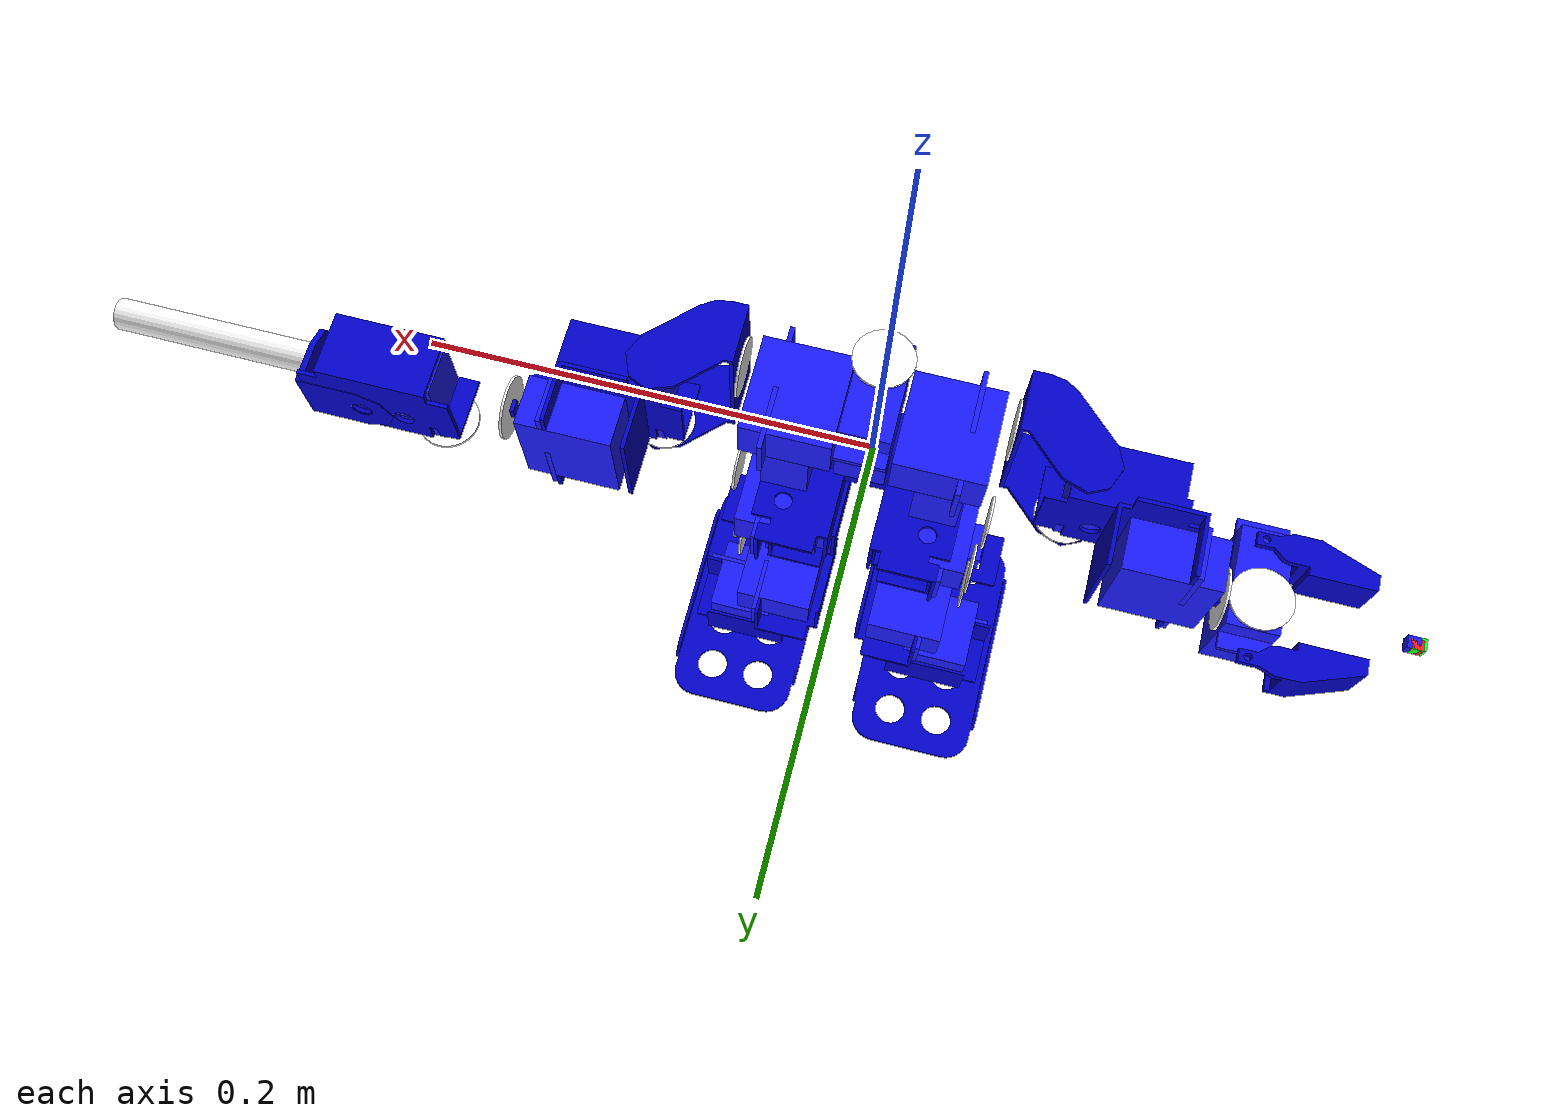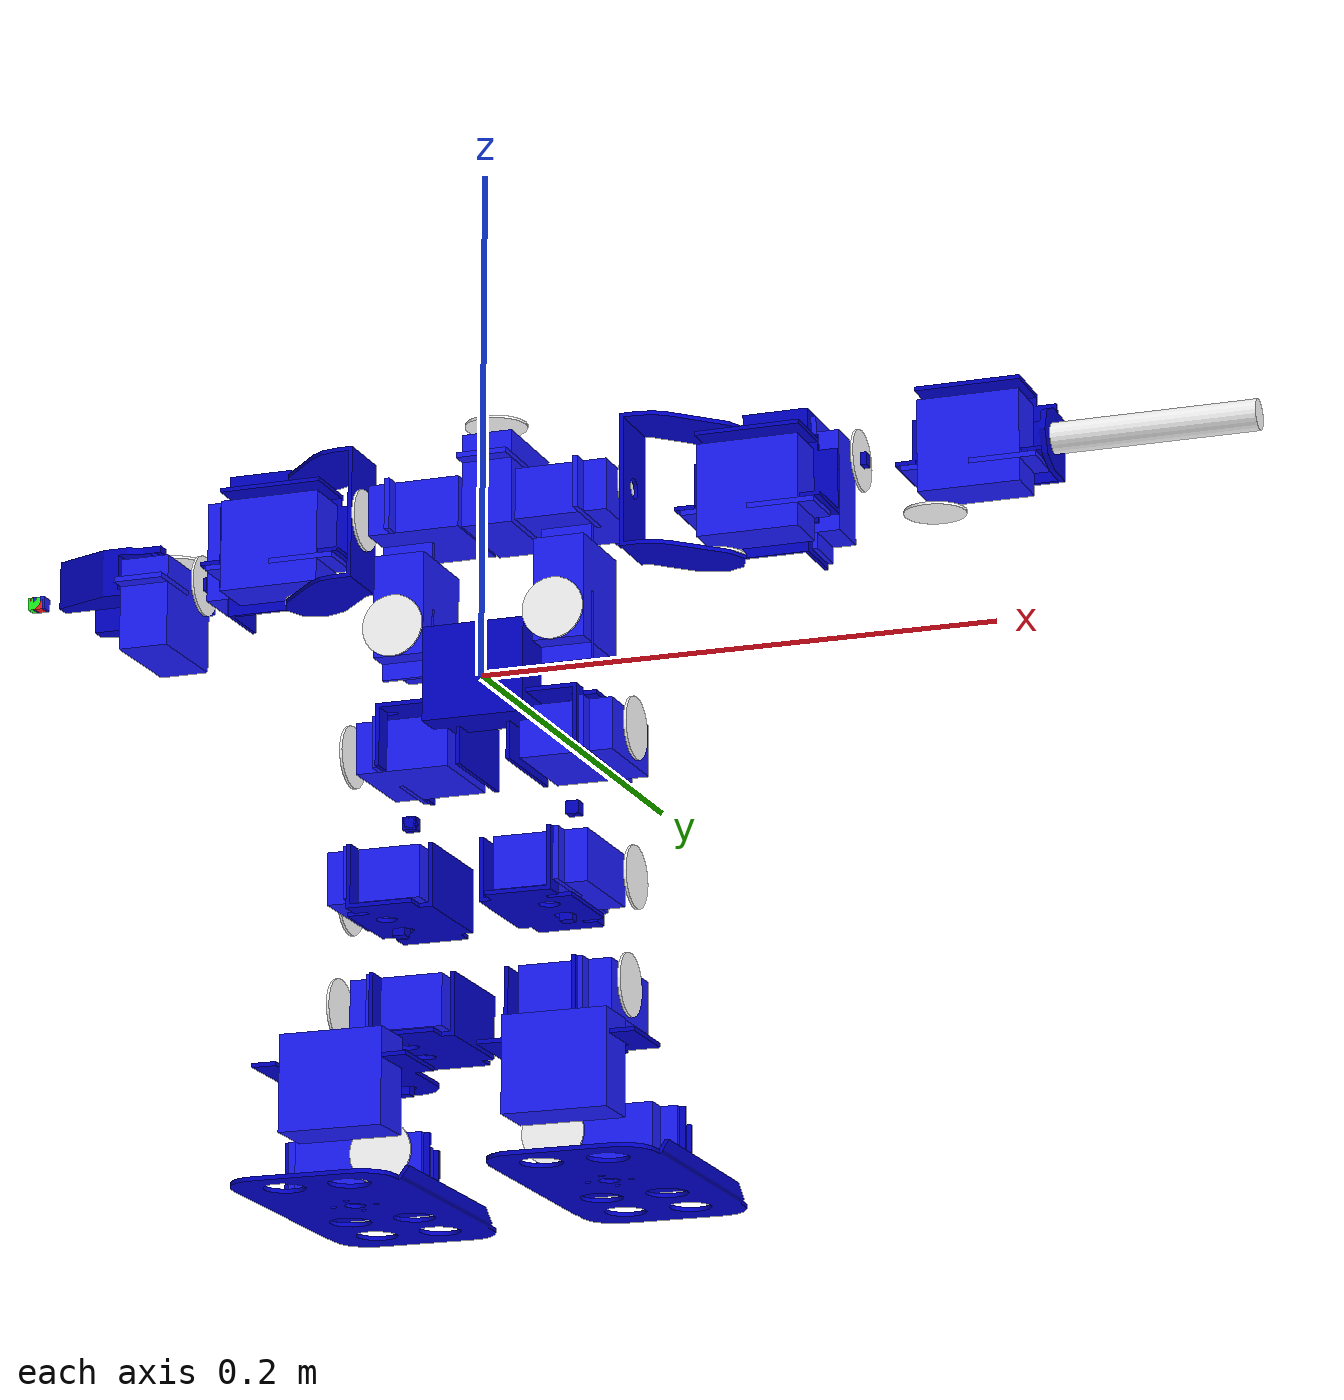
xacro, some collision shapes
<?xml version="1.0"?>
<robot xmlns:xacro="http://www.ros.org/wiki/xacro" name="george">
  <!-- Import all Gazebo-customization elements, including Gazebo colors -->
  <xacro:include filename="$(find george)/urdf/george.gazebo" />

  <xacro:property name="M_PI" value="3.1416" />

  <xacro:macro name="default_inertia">
	<inertia ixx="0.001" ixy="0.0" ixz="0.0" iyy="0.001" iyz="0.0" izz="0.001"/>
  </xacro:macro>

  <link name="torso_mass">
      <visual>
          <geometry>
              <box size=".001 .001 .001"/>
          </geometry>
      </visual>
      <collision>
         <geometry>
             <box size=".001 .001 .001"/>
          </geometry>
      </collision>
      <inertial>
          <inertia ixx="0.001" ixy="0.0" ixz="0.0" iyy="0.001" iyz="0.0" izz="0.001"/>
          <mass value="0.4"/>
      </inertial>
  </link>

  <link name="base_link">
    <visual>
      <geometry>
	<mesh filename="package://george/meshes/torso_mm.dae" scale="1 1 1"/>
      </geometry>
      <origin xyz="0 0 0" rpy="${M_PI/2} 0 ${M_PI}"/>
      <material name="blue">
        <color rgba="0 0 .8 1"/>
      </material>
    </visual>
    <collision>
      <geometry>
	      <box size=".040 .02 .0365"/>
      </geometry>
      <origin xyz="0 0 0" rpy="0 0 ${M_PI}"/>
    </collision>
  </link>

  <!-- *****  Servo macro **********  -->
  <xacro:macro name="servo_body" params="prefix offset">
    <link name="${prefix}_servo_body">
      <visual>
	<geometry>
	  <box size=".040 .02 .0365"/>
	</geometry>
	<origin rpy="0 0 0" xyz="${offset} 0 -0.00825"/>
	<material name="black">
	  <color rgba=".1 .1 1 1"/>
	</material>
      </visual>
      <collision>
	<geometry>
          <box size=".040 .02 .0365"/>
	</geometry>
	<origin rpy="0 0 0" xyz="${offset} 0 -0.00825"/>
      </collision>
      <inertial>
	<mass value="0.055"/>
	<xacro:default_inertia/>
      </inertial>
    </link>

  </xacro:macro>

  <xacro:macro name="servo_parts" params="prefix offset">
    <xacro:servo_body prefix="${prefix}" offset="${offset}"/>

    <link name="${prefix}_servo_lip">
      <visual>
        <geometry>
          <box size=".0528 .02 .002"/>
        </geometry>
        <origin rpy="0 0 0.001" xyz="0 0 0"/>
        <material name="black">
          <color rgba=".1 .1 1 1"/>
        </material>
      </visual>
      <collision>
        <geometry>
          <box size=".0528 .02 .002"/>
	</geometry>
        <origin rpy="0 0 0.001" xyz="0 0 0"/>
       </collision>
      <inertial>
	<mass value="0.001"/>
	<xacro:default_inertia/>
      </inertial>
    </link>

    <link name="${prefix}_servo_horn">
    <visual>
      <geometry>
        <cylinder length="0.001" radius="0.012"/>
      </geometry>
      <origin rpy="0 0 0" xyz="0 0 -.0005"/>
      <material name="white">
        <color rgba="1 1 1 1"/>
      </material>
    </visual>
    <collision>
      <geometry>
        <cylinder length="0.001" radius="0.012"/>
      </geometry>
      <origin rpy="0 0 0" xyz="0 0 -.0005"/>
    </collision>
      <inertial>
	<mass value="0.001"/>
	<xacro:default_inertia/>
      </inertial>
  </link>
  </xacro:macro>

  <!-- servo body parent - for use when the body is the parent -->
  <xacro:macro name="servo_bp" params="prefix rot">
    <xacro:servo_parts prefix="${prefix}" offset="0"/>

    <joint name="${prefix}_servo_lip_to_body" type="fixed">
      <parent link="${prefix}_servo_body"/>
      <child link="${prefix}_servo_lip"/>
      <origin xyz="0 0 0"/>
    </joint>

  <joint name="${prefix}" type="revolute" >
    <axis xyz="0 0 -1"/>
    <limit effort="1000.0" lower="-${M_PI/2}" upper="${M_PI/2}" velocity="0.5"/>
    <parent link="${prefix}_servo_body"/>
    <child link="${prefix}_servo_horn"/>
    <origin xyz=".01 0 0.0161" rpy="0 0 ${rot}"/>
  </joint>
  </xacro:macro>

  <!-- servo horn parent - for use when the body is the parent -->
  <xacro:macro name="servo_hp" params="prefix rot">
    <xacro:servo_parts prefix="${prefix}" offset="0.0161" />

    <joint name="${prefix}_servo_lip_to_body" type="fixed">
      <parent link="${prefix}_servo_body"/>
      <child link="${prefix}_servo_lip"/>
      <origin xyz="0.0161 0 0"/>
    </joint>

  <joint name="${prefix}" type="revolute">
    <axis xyz="0 0 1"/>
    <limit effort="1000.0" lower="-${M_PI/2}" upper="${M_PI/2}" velocity="0.5"/>
    <parent link="${prefix}_servo_horn"/>
    <child link="${prefix}_servo_body"/>
    <origin xyz="0.0 0 -0.0161" rpy="0 0 ${rot}"/>
  </joint>
  </xacro:macro>
  <!-- end servo macro -->

  <!-- cbracket macro, visual origin at inside end -->
  <xacro:macro name="cbracket_e" params="name">
    <xacro:cbracket name="${name}" xyz="0 -0.0286 -0.0246" rpy="0 ${M_PI/2} 0"/>
  </xacro:macro>

  <xacro:macro name="cbracket_s" params="name">
    <xacro:cbracket name="${name}" xyz="0 0 0" rpy="-${M_PI/2} 0 0"/>
  </xacro:macro>

  <xacro:macro name="cbracket" params="name xyz rpy">
  <link name="${name}">
    <visual>
      <geometry>
	<mesh filename="package://george/meshes/cbracket-simple.dae" scale="1 1 1"/>
      </geometry>
      <origin xyz="${xyz}" rpy="${rpy}"/>
      <material name="blue">
        <color rgba="0 0 .8 1"/>
      </material>
    </visual>
    <collision>
      <geometry>
        <box size=".005 .005 .005"/>
	<!--  mesh filename="package://george/meshes/cbracket-simple.dae" scale="1 1 1"/-->
      </geometry>
      <origin xyz="${xyz}" rpy="${rpy}"/>
    </collision>
      <inertial>
	<mass value="0.001"/>
	<xacro:default_inertia/>
      </inertial>
  </link>
  </xacro:macro>
  <!-- end multi purpose bracket -->

  <!-- multi purpose bracket macro A side as the parent -->
  <xacro:macro name="mpbracket_a" params="name rot">
    <xacro:mpbracket name="${name}" xyz="0 0 0" rpy="-${M_PI/2} 0 ${rot}"/>
  </xacro:macro>

  <!-- multi purpose bracket macro B side as the parent -->
  <xacro:macro name="mpbracket_b" params="name">
    <xacro:mpbracket name="${name}" xyz="0 -0.0121 -0.0174" rpy="0 0 0"/>
  </xacro:macro>

  <!-- multi purpose bracket macro C side as the parent -->
  <xacro:macro name="mpbracket_c" params="name">
    <xacro:mpbracket name="${name}" xyz="0.0161 0.0142 -0.0144" rpy="0 ${M_PI} ${M_PI}"/>
  </xacro:macro>

  <!-- multi purpose bracket macro C side as the parent, rotated -->
  <xacro:macro name="mpbracket_cr" params="name">
    <xacro:mpbracket name="${name}" xyz="0.0161 -0.0142 -0.0144" rpy="0 ${M_PI} 0"/>
  </xacro:macro>

  <!-- multi purpose bracket macro -->
  <xacro:macro name="mpbracket" params="name xyz rpy">
  <link name="${name}">
    <visual>
      <geometry>
	<mesh filename="package://george/meshes/multi-purp-simple.dae" scale="1 1 1"/>
      </geometry>
      <origin xyz="${xyz}" rpy="${rpy}"/>
      <material name="blue">
        <color rgba="0 0 .8 1"/>
      </material>
    </visual>
    <collision>
      <geometry>
        <box size=".005 .005 .005"/>
	<!--  mesh filename="package://george/meshes/multi-purp-simple.dae" scale="1 1 1"/-->
      </geometry>
      <origin xyz="${xyz}" rpy="${rpy}"/>
    </collision>
      <inertial>
	<mass value="0.001"/>
	<xacro:default_inertia/>
      </inertial>
  </link>
  </xacro:macro>
  <!-- end multi purpose bracket -->

  <!-- offset-c bracket macro -->
  <xacro:macro name="offcbracket" params="name rot">
  <link name="${name}">
    <visual>
      <geometry>
	<mesh filename="package://george/meshes/offset-c-simple.dae" scale="1 1 1"/>
      </geometry>
      <origin xyz="0 0 0" rpy="${M_PI/2} 0 ${rot}"/>
      <material name="blue">
        <color rgba="0 0 .8 1"/>
      </material>
    </visual>
    <collision>
      <geometry>
        <box size=".005 .005 .005"/>
	<!-- mesh filename="package://george/meshes/offset-c-simple.dae" scale="1 1 1"/-->
      </geometry>
      <origin xyz="0 0 0" rpy="${M_PI/2} 0 ${rot}"/>
    </collision>
      <inertial>
	<mass value="0.001"/>
	<xacro:default_inertia/>
      </inertial>
  </link>
  </xacro:macro>
  <!-- end offset c bracket -->

  <!-- lconnector macro -->
  <xacro:macro name="lconnector" params="name rot">
  <link name="${name}">
    <visual>
      <geometry>
	<mesh filename="package://george/meshes/lconnector-simple.dae" scale="1 1 1"/>
      </geometry>
      <origin xyz="0 0 0" rpy="0 0 ${rot}"/>
      <material name="blue">
        <color rgba="0 0 .8 1"/>
      </material>
    </visual>
    <collision>
      <geometry>
        <box size=".005 .005 .005"/>
	<!--  mesh filename="package://george/meshes/lconnector-simple.dae" scale="1 1 1"/-->
      </geometry>
      <origin xyz="0 0 0" rpy="0 0 ${rot}"/>
    </collision>
      <inertial>
	<mass value="0.001"/>
	<xacro:default_inertia/>
      </inertial>
  </link>
  </xacro:macro>
  <!-- end lconnector -->

  <!-- foot macro -->
  <xacro:macro name="foot" params="name">
  <link name="${name}">
    <visual>
      <geometry>
	<mesh filename="package://george/meshes/foot.dae"/>
      </geometry>
      <origin xyz="0 0 0" rpy="0 0 0"/>
      <material name="blue">
        <color rgba="0 0 .8 1"/>
      </material>
    </visual>
    <collision>
      <geometry>
        <box size="0.065 0.002 0.15"/>
      </geometry>
      <origin xyz="0 0 0" rpy="0 0 0"/>
    </collision>
      <inertial>
	<mass value="0.001"/>
	<xacro:default_inertia/>
      </inertial>
  </link>
  </xacro:macro>
  <!-- end foot macro -->

 <!-- tube -->
  <xacro:property name="tubelen" value="0.079" />
  <xacro:property name="tuberad" value="0.006" />

  <xacro:macro name="tube" params="name">

    <link name="${name}">
    <visual>
      <geometry>
        <cylinder length="${tubelen}" radius="${tuberad}"/>
      </geometry>
      <origin xyz="${tubelen/2} 0 0" rpy="0 ${M_PI/2} 0"/>
      <material name="white">
        <color rgba="1 1 1 1"/>
      </material>
    </visual>
    <collision>
      <geometry>
        <cylinder length="${tubelen}" radius="${tuberad}"/>
      </geometry>
      <origin xyz="${tubelen/2} 0 0" rpy="0 ${M_PI/2} 0"/>
    </collision>
      <inertial>
	<mass value="0.001"/>
	<xacro:default_inertia/>
      </inertial>
  </link>
  </xacro:macro>
 <!-- end tube -->

  <!-- gripper macro -->
  <xacro:macro name="gripper" params="name">

  <link name="${name}_base">
    <visual>
      <geometry>
        <mesh filename="package://george/meshes/gripper-base.dae" scale="1 1 1"/>
      </geometry>
      <origin xyz="0 0 0" rpy="0 ${-M_PI/2} 0"/>
      <material name="blue">
        <color rgba="0 0 .8 1"/>
      </material>
    </visual>
    <collision>
      <geometry>
        <box size=".005 .005 .005"/>
      </geometry>
    </collision>
      <inertial>
        <mass value="0.001"/>
        <xacro:default_inertia/>
      </inertial>

  </link>

  <link name="${name}_lfinger">
    <visual>
      <geometry>
        <mesh filename="package://george/meshes/gripper-lfinger.dae" scale="1 1 1"/>
      </geometry>
      <origin xyz="0 0 0" rpy="0 0 0"/>
      <material name="blue">
        <color rgba="0 0 .8 1"/>
      </material>
    </visual>
    <collision>
      <geometry>
        <box size=".005 .005 .005"/>
      </geometry>
    </collision>
      <inertial>
        <mass value="0.001"/>
        <xacro:default_inertia/>
      </inertial>

  </link>

  <!--joint name="${name}_lfinger_to_base" type="prismatic"-->
  <joint name="${name}_lfinger_to_base" type="fixed">
    <axis xyz="0 1 0"/>
    <parent link="${name}_base"/>
    <child link="${name}_lfinger"/>
    <origin xyz="0 0 0" rpy="0 ${-M_PI/2} 0"/>
    <limit effort="1000.0" lower="-0.005" upper="0.0137" velocity="0.5"/>
  </joint>

  <link name="${name}_rfinger">
    <visual>
      <geometry>
        <mesh filename="package://george/meshes/gripper-rfinger.dae" scale="1 1 1"/>
      </geometry>
      <origin xyz="0 0 0" rpy="0 0 0"/>
      <material name="blue">
        <color rgba="0 0 .8 1"/>
      </material>
    </visual>
    <collision>
      <geometry>
        <box size=".005 .005 .005"/>
      </geometry>
    </collision>
      <inertial>
        <mass value="0.001"/>
        <xacro:default_inertia/>
      </inertial>

  </link>

  <joint name="${name}_rfinger_to_base" type="fixed">
  <!--joint name="${name}_rfinger_to_base" type="prismatic"-->
    <axis xyz="0 1 0"/>
    <parent link="${name}_base"/>
    <child link="${name}_rfinger"/>
    <origin xyz="0 0 0" rpy="0 ${-M_PI/2} 0"/>
    <limit effort="1000.0" lower="-0.0137" upper="0.005" velocity="0.5"/>
  </joint>

  <xacro:servo_bp prefix="${name}" rot="0" />

  <joint name="${name}_servo_to_base" type="fixed">
    <parent link="${name}_base"/>
    <child link="${name}_servo_body"/>
    <origin xyz="${0.0365/2 - 0.00825 - 0.0042} 0.0095 ${0.0021 + 0.0197/2}" rpy="${M_PI/2} 0 ${-M_PI/2}"/>
  </joint>

  </xacro:macro>
  <!-- end gripper macro -->

  <!-- low profile axis macro -->
  <xacro:macro name="lpbracket" params="name mirror">
  <link name="${name}">
    <visual>
      <geometry>
        <mesh filename="package://george/meshes/low-profile-simple.dae" scale="1 1 1"/>
      </geometry>
      <origin xyz="0 0 0" rpy="-${M_PI/2} -${M_PI/2} 0"/>
      <material name="blue">
        <color rgba="0 0 .8 1"/>
      </material>
    </visual>
    <collision>
      <geometry>
        <box size=".005 .005 .005"/>
        <!--  mesh filename="package://george/meshes/low-profile-simple.dae" scale="1 1 1"/-->
      </geometry>
      <origin xyz="0 0 0" rpy="-${M_PI/2} -${M_PI/2} 0"/>
      <material name="blue">)}
        <color rgba="0 0 .8 1"/>
      </material>
    </collision>
      <inertial>
        <mass value="0.001"/>
        <xacro:default_inertia/>
      </inertial>

  </link>

  <xacro:servo_body prefix="${name}_servo" offset="0"/>
  <joint name="${name}_lp_to_servo" type="fixed">
    <parent link="${name}"/>
    <child link="${name}_servo_servo_body"/>
    <origin xyz="-${0.0497 - 0.010} ${mirror * 0.00825 * 2} ${-(0.0103 - (0.04 / 2))}" rpy="0 ${M_PI/2} ${M_PI/2}"/>

  </joint>

  </xacro:macro>
  <!-- end low profile axis macro -->

  <!-- ****************************** Main robot definition ***************** -->

  <!-- ********* Left Leg **************************************** -->

  <xacro:servo_bp prefix="LWaist" rot="${M_PI/2}" />

  <joint name="torso_to_base" type="fixed">
    <parent link="base_link"/>
    <child link="torso_mass"/>
    <origin xyz="0 0 0" rpy="0 0 0"/>
  </joint>

  <joint name="torso_to_lwaist" type="fixed">
    <parent link="base_link"/>
    <child link="LWaist_servo_body"/>
    <origin xyz="0.032 0.005 0.03" rpy="${M_PI/2} ${M_PI/2} 0"/>
  </joint>

  <xacro:cbracket_e name="lthigh1" />

  <joint name="lthigh1_to_lwaist" type="fixed">
    <parent link="LWaist_servo_horn"/>
    <child link="lthigh1"/>
    <origin xyz="0 0 0" rpy="0 0 0"/>
  </joint>

  <xacro:mpbracket_a name="lthigh2" rot="${M_PI/2}"/>
  <joint name="lthigh1_to_lthigh2" type="fixed">
    <parent link="lthigh1"/>
    <child link="lthigh2"/>
    <origin xyz="-0.0054 -0.0286 ${-0.0246-0.0083}" rpy="-${M_PI/2} 0 0"/>
  </joint>

  <xacro:servo_bp prefix="LHip" rot="${M_PI}" />

  <joint name="lthigh2_to_LHip" type="fixed">
    <parent link="lthigh2"/>
    <child link="LHip_servo_body"/>
    <origin xyz="${0.0134+.001} 0 -0.0142" rpy="-${M_PI/2} 0 -${M_PI/2}"/>
  </joint>

  <xacro:cbracket_e name="lthigh3" />

  <joint name="lthigh3_to_lhip" type="fixed">
    <parent link="LHip_servo_horn"/>
    <child link="lthigh3"/>
    <origin xyz="0 0 0" rpy="0 0 0"/>
  </joint>

  <xacro:cbracket_s name="lthigh4" />

  <joint name="lthigh3_to_lthigh4" type="fixed">
    <parent link="lthigh3"/>
    <child link="lthigh4"/>
    <origin xyz="0 -0.0286 -0.0246" rpy="-${M_PI/2} ${M_PI/2} 0"/>
  </joint>

  <xacro:servo_hp prefix="LKnee" rot="${M_PI/2}"/>

  <joint name="lthigh4_to_lknee" type="fixed">
    <parent link="lthigh4"/>
    <child link="LKnee_servo_horn"/>
    <origin xyz="-0.0246 0 -0.0286" rpy="0 -${M_PI/2} 0"/>
  </joint>

  <xacro:mpbracket_c name="lknee1"/>

  <joint name="lknee_to_lknee1" type="fixed">
    <parent link="LKnee_servo_body"/>
    <child link="lknee1"/>
    <origin xyz="0 0 0" rpy="0 0 0"/>
  </joint>

  <xacro:cbracket_s name="lknee2" />

  <joint name="lknee1_to_lknee2" type="fixed">
    <parent link="lknee1"/>
    <child link="lknee2"/>
    <origin xyz="${0.0161-0.0083} 0.0141 ${-0.0134+0.0054}" rpy="${M_PI/2} ${M_PI/2} 0"/>
  </joint>

  <xacro:servo_hp prefix="LAnkleBend" rot="${-M_PI/2}"/>

  <joint name="lknee2_to_lanklebend" type="fixed">
    <parent link="lknee2"/>
    <child link="LAnkleBend_servo_horn"/>
    <origin xyz="-0.0246 0 -0.0286" rpy="0 -${M_PI/2} 0"/>
  </joint>

  <xacro:mpbracket_cr name="lshin1"/>

  <joint name="lanklebend_to_lshin1" type="fixed">
    <parent link="LAnkleBend_servo_body"/>
    <child link="lshin1"/>
    <origin xyz="0 0 0" rpy="0 0 0"/>
  </joint>

  <xacro:lpbracket name="lpleft" mirror="0"/>

  <joint name="LAnkleRotate" type="revolute">
    <axis xyz="0 -1 0"/>
    <limit effort="1000.0" lower="-${M_PI/2}" upper="${M_PI/2}" velocity="0.5"/>
    <parent link="lshin1"/>
    <child link="lpleft"/>
    <origin xyz="${0.0161-0.0083} -${0.0141+0.014} ${-0.0134+0.0054}" rpy="0 0 0"/>
  </joint>

  <xacro:cbracket_s name="lshin2" />

  <joint name="lpleft_to_lshin2" type="fixed">
    <parent link="lpleft"/>
    <child link="lshin2"/>
    <origin xyz="0 0 0" rpy="-${M_PI/2} 0 0"/>
  </joint>

  <xacro:servo_hp prefix="LAnkleTilt" rot="-${M_PI/2}"/>

  <joint name="lshin2_to_lankletwist" type="fixed">
    <parent link="lshin2"/>
    <child link="LAnkleTilt_servo_horn"/>
    <origin xyz="-0.0246 0 -0.0286" rpy="0 -${M_PI/2} 0"/>
  </joint>

  <xacro:mpbracket_cr name="lshin3"/>

  <joint name="lankletwist_to_lshin3" type="fixed">
    <parent link="LAnkleTilt_servo_body"/>
    <child link="lshin3"/>
    <origin xyz="0 0 0" rpy="0 0 0"/>
  </joint>

  <xacro:foot name="lfoot"/>

  <joint name="lshin3_to_lfoot" type="fixed">
    <parent link="lshin3"/>
    <child link="lfoot"/>
    <origin xyz="${0.0161} -${0.0141+0.0015} ${0*(-0.0134+0.0054)}" rpy="0 ${M_PI} 0"/>
  </joint>
  <!-- ***** Right Leg ******************************************* -->
  <xacro:servo_bp prefix="RWaist" rot="${M_PI/2}" />

  <joint name="torso_to_rwaist" type="fixed">
    <parent link="base_link"/>
    <child link="RWaist_servo_body"/>
    <origin xyz="-0.032 0.005 0.03" rpy="${M_PI/2} ${M_PI/2} 0"/>
  </joint>

  <xacro:cbracket_e name="rthigh1" />

  <joint name="rthigh1_to_rwaist" type="fixed">
    <parent link="RWaist_servo_horn"/>
    <child link="rthigh1"/>
    <origin xyz="0 0 0" rpy="0 0 0"/>
  </joint>

  <xacro:mpbracket_a name="rthigh2" rot="${M_PI/2}"/>

  <joint name="rthigh1_to_rthigh2" type="fixed">
    <parent link="rthigh1"/>
    <child link="rthigh2"/>
    <origin xyz="+0.0054 -0.0286 ${-0.0246-0.0083}" rpy="-${M_PI/2} ${M_PI} 0"/>
  </joint>

  <xacro:servo_bp prefix="RHip" rot="0" />

  <joint name="rthigh2_to_rhip" type="fixed">
    <parent link="rthigh2"/>
    <child link="RHip_servo_body"/>
    <origin xyz="${0.0134+.001} 0 -0.0142" rpy="-${M_PI/2} ${M_PI} -${M_PI/2}"/>
  </joint>

  <xacro:cbracket_e name="rthigh3" />

  <joint name="rthigh3_to_rhip" type="fixed">
    <parent link="RHip_servo_horn"/>
    <child link="rthigh3"/>
    <origin xyz="0 0 0" rpy="0 0 0"/>
  </joint>

  <xacro:cbracket_s name="rthigh4" />

  <joint name="rthigh3_to_rthigh4" type="fixed">
    <parent link="rthigh3"/>
    <child link="rthigh4"/>
    <origin xyz="0 -0.0286 -0.0246" rpy="-${M_PI/2} ${M_PI/2} 0"/>
  </joint>

  <xacro:servo_hp prefix="RKnee" rot="-${M_PI/2}"/>

  <joint name="rthigh4_to_knee" type="fixed">
    <parent link="rthigh4"/>
    <child link="RKnee_servo_horn"/>
    <origin xyz="-0.0246 0 -0.0286" rpy="0 -${M_PI/2} 0"/>
  </joint>

  <xacro:mpbracket_cr name="rknee1"/>

  <joint name="rknee_to_rknee1" type="fixed">
    <parent link="RKnee_servo_body"/>
    <child link="rknee1"/>
    <origin xyz="0 0 0" rpy="0 0 0"/>
  </joint>

  <xacro:cbracket_s name="rknee2" />

  <joint name="rknee1_to_rknee2" type="fixed">
    <parent link="rknee1"/>
    <child link="rknee2"/>
    <origin xyz="${0.0161-0.0083} -0.0141 ${-0.0134+0.0054}" rpy="${-M_PI/2} ${M_PI/2} 0"/>
  </joint>

  <xacro:servo_hp prefix="RAnkleBend" rot="${M_PI/2}"/>

  <joint name="rknee2_to_ranklebend" type="fixed">
    <parent link="rknee2"/>
    <child link="RAnkleBend_servo_horn"/>
    <origin xyz="-0.0246 0 -0.0286" rpy="0 -${M_PI/2} 0"/>
  </joint>

  <xacro:mpbracket_c name="rshin1"/>

  <joint name="ranklebend_to_rshin1" type="fixed">
    <parent link="RAnkleBend_servo_body"/>
    <child link="rshin1"/>
    <origin xyz="0 0 0" rpy="0 0 0"/>
  </joint>

  <xacro:lpbracket name="lpright" mirror="1"/>

  <joint name="RAnkleRotate" type="revolute">
    <axis xyz="0 1 0"/>
    <limit effort="1000.0" lower="-${M_PI/2}" upper="${M_PI/2}" velocity="0.5"/>
    <parent link="rshin1"/>
    <child link="lpright"/>
    <origin xyz="${0.0161-0.0083} ${+0.0141 + 0.014} ${-0.0134+0.0054}" rpy="0 0 0"/>
  </joint>

  <xacro:cbracket_s name="rshin2" />

  <joint name="rshin1_to_rshin2" type="fixed">
    <parent link="lpright"/>
    <child link="rshin2"/>
    <origin xyz="0 0.002 0" rpy="${M_PI/2} 0 0"/>
  </joint>

  <xacro:servo_hp prefix="RAnkleTilt" rot="${M_PI/2}"/>

  <joint name="rshin2_to_RAnkleTilt" type="fixed">
    <parent link="rshin2"/>
    <child link="RAnkleTilt_servo_horn"/>
    <origin xyz="-0.0246 0 -0.0286" rpy="0 -${M_PI/2} 0"/>
  </joint>

  <xacro:mpbracket_c name="rshin3"/>

  <joint name="rankletwist_to_rshin3" type="fixed">
    <parent link="RAnkleTilt_servo_body"/>
    <child link="rshin3"/>
    <origin xyz="0 0 0" rpy="0 0 0"/>
  </joint>

  <xacro:foot name="rfoot"/>

  <joint name="rshin3_to_rfoot" type="fixed">
    <parent link="rshin3"/>
    <child link="rfoot"/>
    <origin xyz="${0.0161} ${0.0141+0.0015} ${0*(-0.0134+0.0054)}" rpy="${M_PI} 0 0"/>
  </joint>

  <!-- ***** Left Arm  ******************************************* -->

  <xacro:servo_bp prefix="LShoulder" rot="0" />

  <joint name="torso_to_lshoulder" type="fixed">
    <parent link="base_link"/>
    <child link="LShoulder_servo_body"/>
    <origin xyz="0.0380 0.023175 0.071438" rpy="${-M_PI/2} 0 ${-M_PI/2}"/>
  </joint>

  <xacro:offcbracket name="lshoulder1" rot="${M_PI}" />

  <joint name="lshoulder1_to_lshoulder" type="fixed">
    <parent link="LShoulder_servo_horn"/>
    <child link="lshoulder1"/>
    <origin xyz="0 0 0" rpy="0 0 ${-M_PI/2}"/>
  </joint>

  <xacro:servo_hp prefix="LElbow" rot="0"/>

  <joint name="lelbow_to_shoulder1" type="fixed">
    <parent link="lshoulder1"/>
    <child link="LElbow_servo_horn"/>
    <origin xyz="-0.0246 -0.0187 0.027" rpy="0 -${M_PI/2} 0"/>
  </joint>

  <xacro:mpbracket_cr name="lforearm1"/>

  <joint name="lforearm1_to_lelbow" type="fixed">
    <parent link="LElbow_servo_body"/>
    <child link="lforearm1"/>
    <origin xyz="0 0 0" rpy="0 0 0"/>
  </joint>

  <xacro:mpbracket_a name="lforearm2" rot="${M_PI/2}"/>

  <joint name="lforearm2_to_lforearm1" type="fixed">
    <parent link="lforearm1"/>
    <child link="lforearm2"/>
    <origin xyz="${0.0161+0.0083-0.0054} -0.0142 ${-0.0246+0.0083}" rpy="${-M_PI/2} 0 0"/>
  </joint>

  <xacro:servo_bp prefix="LWristTwist" rot="${M_PI}" />

  <joint name="lwristtwist_to_lforearm2" type="fixed">
    <parent link="lforearm2"/>
    <child link="LWristTwist_servo_body"/>
    <origin xyz="${0.0134+.001} 0 -0.0142" rpy="${M_PI/2} 0 ${M_PI/2}"/>
  </joint>

  <xacro:cbracket_s name="lforearm3" />

  <joint name="lforearm3_to_lwristtwist" type="fixed">
    <parent link="LWristTwist_servo_horn"/>
    <child link="lforearm3"/>
    <origin xyz="0 0 0" rpy="${M_PI} 0 0"/>
  </joint>

  <xacro:servo_hp prefix="LWristFlex" rot="0"/>

  <joint name="lwristflex_to_lforearm3" type="fixed">
    <parent link="lforearm3"/>
    <child link="LWristFlex_servo_horn"/>
    <origin xyz="0.0246 0 -0.0286" rpy="0 ${M_PI/2} 0"/>
  </joint>

  <xacro:mpbracket_cr name="lforearm4"/>

  <joint name="lwristflex_to_lforearm4" type="fixed">
    <parent link="LWristFlex_servo_body"/>
    <child link="lforearm4"/>
    <origin xyz="0 0 0" rpy="0 0 0"/>
  </joint>

  <xacro:lconnector name="lforearm5" rot="0"/>

  <joint name="lforearm4_to_lforearm5" type="fixed">
    <parent link="lforearm4"/>
    <child link="lforearm5"/>
    <origin xyz="${0.0161+0.0083} -0.0121 ${-0.0134+0.0054}" rpy="0 0 0"/>
  </joint>

  <xacro:tube name="ltube"/>

  <joint name="lforearm5_to_ltube" type="fixed">
    <parent link="lforearm5"/>
    <child link="ltube"/>
    <origin xyz="0.0227 0.013 0" rpy="0 0 0"/>
  </joint>

  <link name="ltip1">
    <visual>
      <geometry>
        <box size=".005 .005 .005"/>
      </geometry>
      <origin rpy="0 0 0" xyz="0 0 0"/>
      <material name="blue">
        <color rgba=".1 .1 1 1"/>
      </material>
    </visual>
  </link>

  <joint name="ltip1_to_ltube" type="revolute">
    <axis xyz="0 0 1"/>
    <limit effort="1000.0" lower="-${M_PI/2}" upper="${M_PI/2}" velocity="0.5"/>
    <parent link="ltube"/>
    <child link="ltip1"/>
    <origin xyz="0.070 0 0" rpy="0 0 0"/>
  </joint>

  <link name="ltip2">
    <visual>
      <geometry>
        <box size=".005 .005 .005"/>
      </geometry>
      <origin rpy="0 0 0" xyz="0 0 0"/>
      <material name="red">
        <color rgba="1 .1 .1 1"/>
      </material>
    </visual>
  </link>

  <joint name="ltip1_to_ltip2" type="revolute">
    <axis xyz="0 1 0"/>
    <limit effort="1000.0" lower="-${M_PI/2}" upper="${M_PI/2}" velocity="0.5"/>
    <parent link="ltip1"/>
    <child link="ltip2"/>
    <origin xyz="0.001 0 0" rpy="0 0 0"/>
  </joint>

  <link name="ltip3">
    <visual>
      <geometry>
        <box size=".005 .005 .005"/>
      </geometry>
      <origin rpy="0 0 0" xyz="0 0 0"/>
      <material name="green">
        <color rgba=".1 1 .1 1"/>
      </material>
    </visual>
  </link>

  <joint name="ltip2_to_ltip3" type="revolute">
    <axis xyz="1 0 0"/>
    <limit effort="1000.0" lower="-${M_PI/2}" upper="${M_PI/2}" velocity="0.5"/>
    <parent link="ltip2"/>
    <child link="ltip3"/>
    <origin xyz="0.001 0 0" rpy="0 0 0"/>
  </joint>

  <!-- ***** Right Arm  ******************************************* -->

  <xacro:servo_bp prefix="RShoulder" rot="0" />

  <joint name="torso_to_rshoulder" type="fixed">
    <parent link="base_link"/>
    <child link="RShoulder_servo_body"/>
    <origin xyz="-0.0380 0.023175 0.071438" rpy="${M_PI/2} 0 ${-M_PI/2}"/>
  </joint>

  <xacro:offcbracket name="rshoulder1" rot="0" />

  <joint name="rshoulder1_to_rshoulder" type="fixed">
    <parent link="RShoulder_servo_horn"/>
    <child link="rshoulder1"/>
    <origin xyz="0 0 0" rpy="0 0 ${M_PI/2}"/>
  </joint>

  <xacro:servo_hp prefix="RElbow" rot="0"/>

  <joint name="relbow_to_shoulder1" type="fixed">
    <parent link="rshoulder1"/>
    <child link="RElbow_servo_horn"/>
    <origin xyz="-0.0246 0.0187 0.027" rpy="0 -${M_PI/2} 0"/>
  </joint>

  <xacro:mpbracket_cr name="rforearm1"/>

  <joint name="rforearm1_to_relbow" type="fixed">
    <parent link="RElbow_servo_body"/>
    <child link="rforearm1"/>
    <origin xyz="${0.0161*2} 0 0" rpy="${M_PI} ${M_PI} 0"/>
  </joint>

  <xacro:mpbracket_a name="rforearm2" rot="${M_PI/2}"/>

  <joint name="rforearm2_to_rforearm1" type="fixed">
    <parent link="rforearm1"/>
    <child link="rforearm2"/>
    <origin xyz="${0.0161-0.0083-0.0054} -0.0142 ${-0.0246+0.0083}" rpy="${-M_PI/2} ${M_PI} 0"/>
  </joint>

  <xacro:servo_bp prefix="RWristTwist" rot="0" />

  <joint name="rwristtwist_to_rforearm2" type="fixed">
    <parent link="rforearm2"/>
    <child link="RWristTwist_servo_body"/>
    <origin xyz="${0.0134+.001} 0 -0.0142" rpy="${M_PI/2} 0 ${M_PI/2}"/>
  </joint>

  <xacro:gripper name="RHand" />

  <joint name="gripper_to_wrist" type="fixed">
    <parent link="RWristTwist_servo_horn"/>
    <child link="RHand_base"/>
    <origin xyz="0 0 0" rpy="0 0 0"/>
  </joint>

  <link name="rtip1">
    <visual>
      <geometry>
        <box size=".005 .005 .005"/>
      </geometry>
      <origin rpy="0 0 0" xyz="0 0 0"/>
      <material name="blue">
        <color rgba=".1 .1 1 1"/>
      </material>
    </visual>
  </link>
  <joint name="rtip1" type="fixed">
    <axis xyz="0 0 1"/>
    <limit effort="1000.0" lower="-${M_PI/2}" upper="${M_PI/2}" velocity="0.5"/>
    <parent link="RHand_base"/>
    <child link="rtip1"/>
    <origin xyz="0 0 0.070" rpy="0 ${M_PI/2} 0"/>
  </joint>

  <link name="rtip2">
    <visual>
      <geometry>
        <box size=".005 .005 .005"/>
      </geometry>
      <origin rpy="0 0 0" xyz="0 0 0"/>
      <material name="red">
        <color rgba="1 .1 .1 1"/>
      </material>
    </visual>
  </link>

  <joint name="rtip1_to_rtip2" type="revolute">
    <axis xyz="0 1 0"/>
    <limit effort="1000.0" lower="-${M_PI/2}" upper="${M_PI/2}" velocity="0.5"/>
    <parent link="rtip1"/>
    <child link="rtip2"/>
    <origin xyz="-0.001 0 0" rpy="0 0 0"/>
  </joint>

  <link name="rtip3">
    <visual>
      <geometry>
        <box size=".005 .005 .005"/>
      </geometry>
      <origin rpy="0 0 0" xyz="0 0 0"/>
      <material name="green">
        <color rgba=".1 1 .1 1"/>
      </material>
    </visual>
  </link>

  <joint name="rtip2_to_rtip3" type="revolute">
    <axis xyz="1 0 0"/>
    <limit effort="1000.0" lower="-${M_PI/2}" upper="${M_PI/2}" velocity="0.5"/>
    <parent link="rtip2"/>
    <child link="rtip3"/>
    <origin xyz="-0.001 0 0" rpy="0 0 0"/>
  </joint>

  <!-- ***** head      ******************************************* -->

  <xacro:servo_bp prefix="Head" rot="0" />

  <joint name="torso_to_head" type="fixed">
    <parent link="base_link"/>
    <child link="Head_servo_body"/>
    <origin xyz="0 0.023175 0.087313" rpy="0 0 ${-M_PI/2}"/>
  </joint>

  <!-- *** Gazebo sim stuff ************************************** -->

  <transmission name="tran0">
    <type>transmission_interface/SimpleTransmission</type>
    <joint name="RWaist"/>
    <actuator name="motor0">
      <hardwareInterface>EffortJointInterface</hardwareInterface>
      <mechanicalReduction>1</mechanicalReduction>
    </actuator>
  </transmission>

  <transmission name="tran1">
    <type>transmission_interface/SimpleTransmission</type>
    <joint name="RHip"/>
    <actuator name="motor1">
      <hardwareInterface>EffortJointInterface</hardwareInterface>
      <mechanicalReduction>1</mechanicalReduction>
    </actuator>
  </transmission>

  <transmission name="tran2">
    <type>transmission_interface/SimpleTransmission</type>
    <joint name="RKnee"/>
    <actuator name="motor2">
      <hardwareInterface>EffortJointInterface</hardwareInterface>
      <mechanicalReduction>1</mechanicalReduction>
    </actuator>
  </transmission>

  <transmission name="tran3">
    <type>transmission_interface/SimpleTransmission</type>
    <joint name="RAnkleBend"/>
    <actuator name="motor3">
      <hardwareInterface>EffortJointInterface</hardwareInterface>
      <mechanicalReduction>1</mechanicalReduction>
    </actuator>
  </transmission>

  <transmission name="tran4">
    <type>transmission_interface/SimpleTransmission</type>
    <joint name="RAnkleRotate"/>
    <actuator name="motor4">
      <hardwareInterface>EffortJointInterface</hardwareInterface>
      <mechanicalReduction>1</mechanicalReduction>
    </actuator>
  </transmission>

  <transmission name="tran5">
    <type>transmission_interface/SimpleTransmission</type>
    <joint name="RAnkleTilt"/>
    <actuator name="motor5">
      <hardwareInterface>EffortJointInterface</hardwareInterface>
      <mechanicalReduction>1</mechanicalReduction>
    </actuator>
  </transmission>

    <transmission name="tran6">
    <type>transmission_interface/SimpleTransmission</type>
    <joint name="LWaist"/>
    <actuator name="motor6">
      <hardwareInterface>EffortJointInterface</hardwareInterface>
      <mechanicalReduction>1</mechanicalReduction>
    </actuator>
  </transmission>

  <transmission name="tran7">
    <type>transmission_interface/SimpleTransmission</type>
    <joint name="LHip"/>
    <actuator name="motor7">
      <hardwareInterface>EffortJointInterface</hardwareInterface>
      <mechanicalReduction>1</mechanicalReduction>
    </actuator>
  </transmission>

  <transmission name="tran8">
    <type>transmission_interface/SimpleTransmission</type>
    <joint name="LKnee"/>
    <actuator name="motor8">
      <hardwareInterface>EffortJointInterface</hardwareInterface>
      <mechanicalReduction>1</mechanicalReduction>
    </actuator>
  </transmission>

  <transmission name="tran9">
    <type>transmission_interface/SimpleTransmission</type>
    <joint name="LAnkleBend"/>
    <actuator name="motor9">
      <hardwareInterface>EffortJointInterface</hardwareInterface>
      <mechanicalReduction>1</mechanicalReduction>
    </actuator>
  </transmission>

  <transmission name="tran10">
    <type>transmission_interface/SimpleTransmission</type>
    <joint name="LAnkleRotate"/>
    <actuator name="motor10">
      <hardwareInterface>EffortJointInterface</hardwareInterface>
      <mechanicalReduction>1</mechanicalReduction>
    </actuator>
  </transmission>

  <transmission name="tran11">
    <type>transmission_interface/SimpleTransmission</type>
    <joint name="LAnkleTilt"/>
    <actuator name="motor11">
      <hardwareInterface>EffortJointInterface</hardwareInterface>
      <mechanicalReduction>1</mechanicalReduction>
    </actuator>
  </transmission>

  <transmission name="tran12">
    <type>transmission_interface/SimpleTransmission</type>
    <joint name="LShoulder"/>
    <actuator name="motor12">
      <hardwareInterface>EffortJointInterface</hardwareInterface>
      <mechanicalReduction>1</mechanicalReduction>
    </actuator>
  </transmission>

  <transmission name="tran13">
    <type>transmission_interface/SimpleTransmission</type>
    <joint name="LElbow"/>
    <actuator name="motor13">
      <hardwareInterface>EffortJointInterface</hardwareInterface>
      <mechanicalReduction>1</mechanicalReduction>
    </actuator>
  </transmission>

  <transmission name="tran14">
    <type>transmission_interface/SimpleTransmission</type>
    <joint name="LWristTwist" />
    <actuator name="motor14">
      <hardwareInterface>EffortJointInterface</hardwareInterface>
      <mechanicalReduction>1</mechanicalReduction>
    </actuator>
  </transmission>

  <transmission name="tran15">
    <type>transmission_interface/SimpleTransmission</type>
    <joint name="LWristFlex" />
    <actuator name="motor15">
      <hardwareInterface>EffortJointInterface</hardwareInterface>
      <mechanicalReduction>1</mechanicalReduction>
    </actuator>
  </transmission>

  <transmission name="tran16">
    <type>transmission_interface/SimpleTransmission</type>
    <joint name="RShoulder"/>
    <actuator name="motor16">
      <hardwareInterface>EffortJointInterface</hardwareInterface>
      <mechanicalReduction>1</mechanicalReduction>
    </actuator>
  </transmission>

  <transmission name="tran17">
    <type>transmission_interface/SimpleTransmission</type>
    <joint name="RElbow"/>
    <actuator name="motor17">
      <hardwareInterface>EffortJointInterface</hardwareInterface>
      <mechanicalReduction>1</mechanicalReduction>
    </actuator>
  </transmission>

  <transmission name="tran18">
    <type>transmission_interface/SimpleTransmission</type>
    <joint name="RWristTwist" />
    <actuator name="motor18">
      <hardwareInterface>EffortJointInterface</hardwareInterface>
      <mechanicalReduction>1</mechanicalReduction>
    </actuator>
  </transmission>

  <transmission name="tran20">
    <type>transmission_interface/SimpleTransmission</type>
    <joint name="Head" />
    <actuator name="motor20">
      <hardwareInterface>EffortJointInterface</hardwareInterface>
      <mechanicalReduction>1</mechanicalReduction>
    </actuator>
  </transmission>

</robot>
